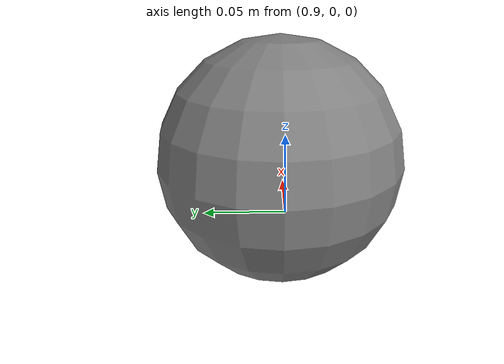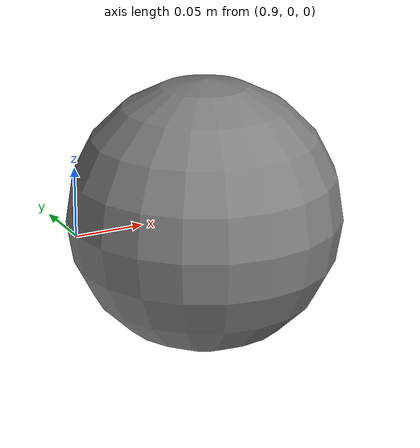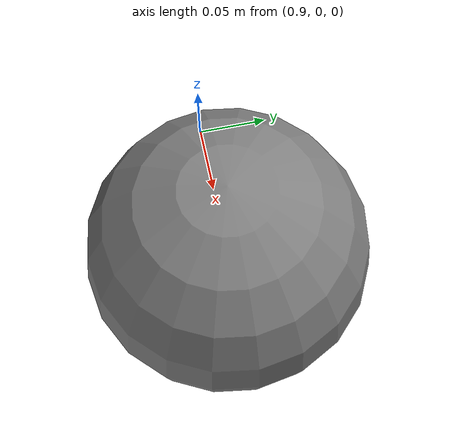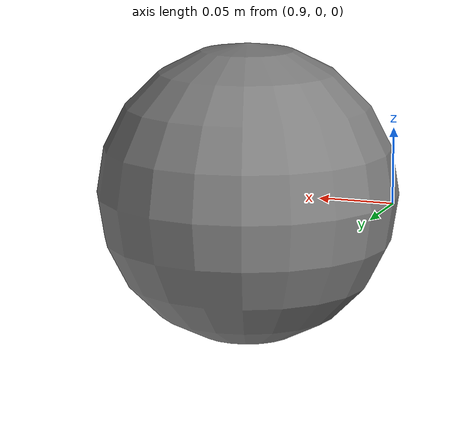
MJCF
<mujoco>
                <compiler fusestatic="true"/>
                <worldbody>
                    <body name="parent">
                        <joint type="hinge"/>
                        <body name="static_child" pos="1 0 0" euler="0 0 90">
                            <geom type="sphere" size="0.1" xyaxes="0 1 0 -1 0 0"/>
                        </body>
                    </body>
                </worldbody>
            </mujoco>
